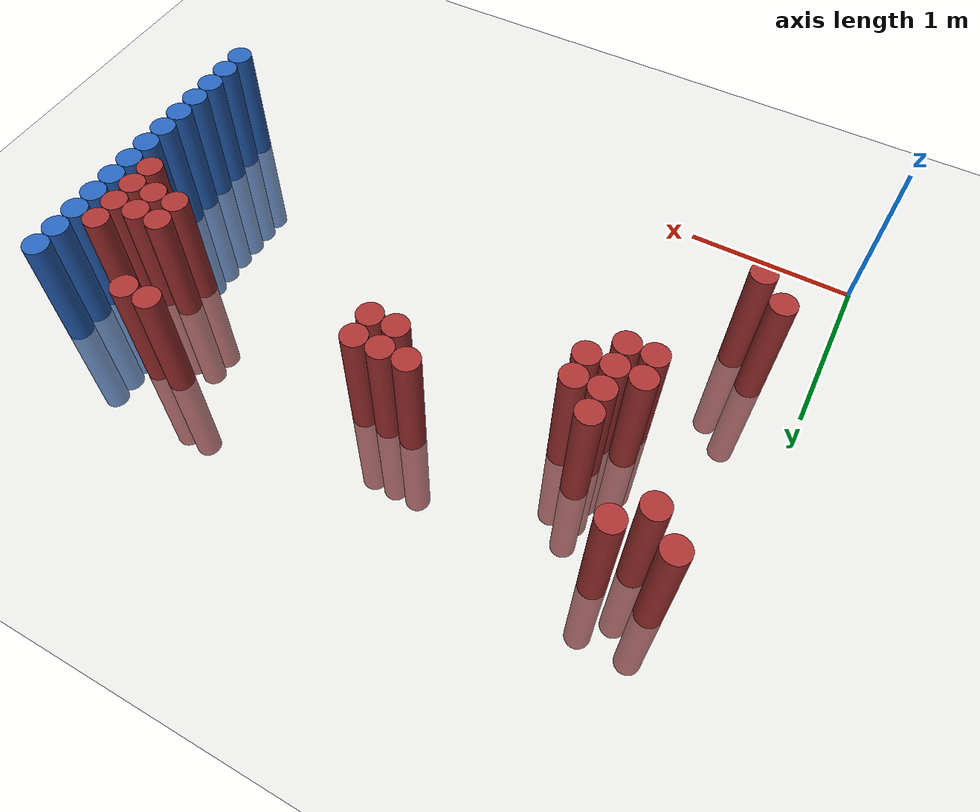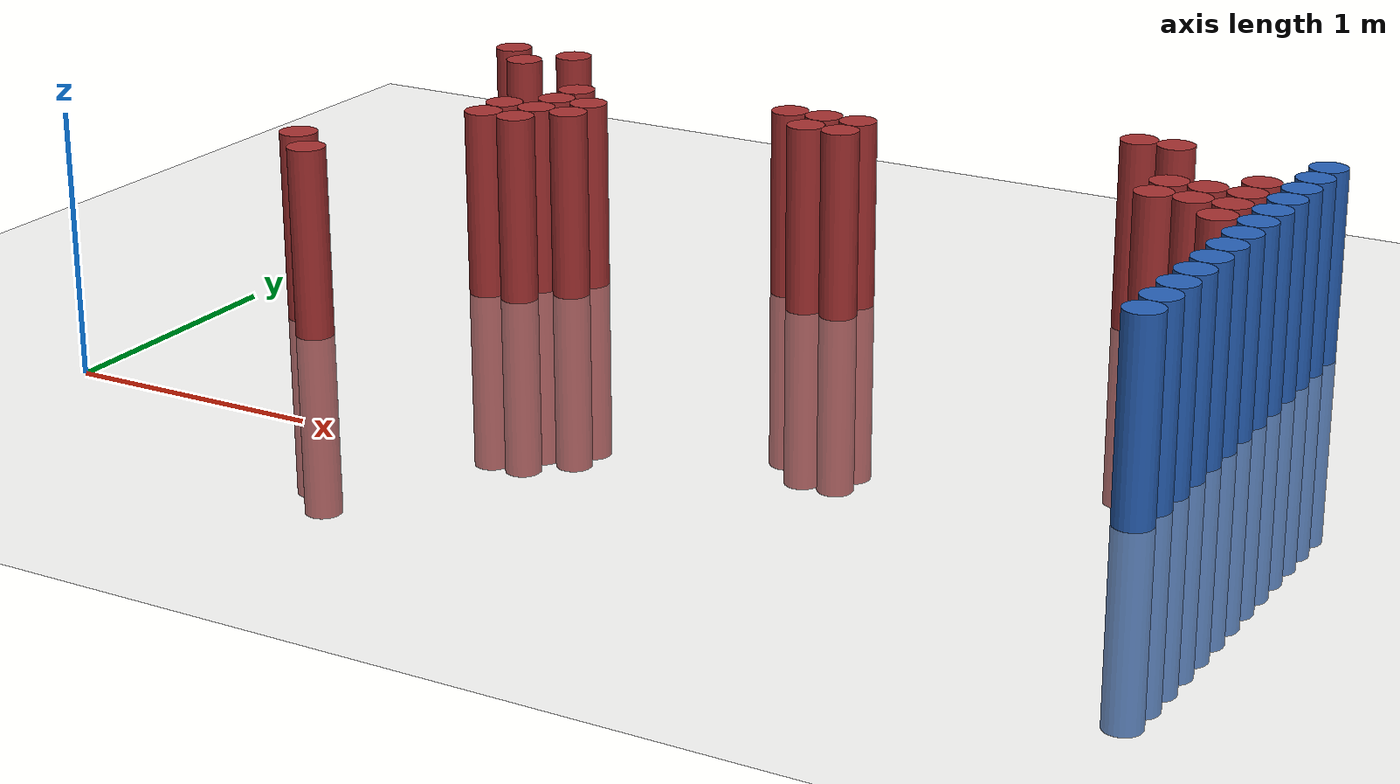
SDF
<sdf version="1.6">
 <world name="default">
  <model name="ground_plane">
   <static>1</static>
   <link name="link">
    <collision name="collision">
     <geometry><plane><normal>0 0 1</normal><size>100 100</size></plane></geometry>
     <surface><friction><ode><mu>100</mu><mu2>50</mu2></ode></friction></surface>
    </collision>
    <visual name="visual">
     <cast_shadows>0</cast_shadows>
     <geometry><plane><normal>0 0 1</normal><size>100 100</size></plane></geometry>
     <material>
      <script><uri>file://media/materials/scripts/gazebo.material</uri><name>Gazebo/Grey</name></script>
     </material>
    </visual>
   </link>
  </model>
  <model name="unit_cylinder_124">
   <static>1</static>
   <pose>3.925000 0.775000 0.000000 0.000000 0.000000 0.000000</pose>
   <link name="link">
    <inertial>
     <mass>1</mass>
     <inertia><ixx>0.145833</ixx><ixy>0</ixy><ixz>0</ixz><iyy>0.145833</iyy><iyz>0</iyz><izz>0.125</izz></inertia>
    </inertial>
    <collision name="collision">
     <geometry><cylinder><radius>0.075000</radius><length>1.5</length></cylinder></geometry>
    </collision>
    <visual name="visual">
     <geometry><cylinder><radius>0.075000</radius><length>1.5</length></cylinder></geometry>
     <material>
      <ambient>0.152000 0.379000 0.720000 1</ambient>
      <diffuse>0.152000 0.379000 0.720000 1</diffuse>
     </material>
     <material>
      <script><name>Gazebo/Grey</name><uri>file://media/materials/scripts/gazebo.material</uri></script>
     </material>
    </visual>
   </link>
  </model>
  <model name="unit_cylinder_126">
   <static>1</static>
   <pose>3.925000 0.925000 0.000000 0.000000 0.000000 0.000000</pose>
   <link name="link">
    <inertial>
     <mass>1</mass>
     <inertia><ixx>0.145833</ixx><ixy>0</ixy><ixz>0</ixz><iyy>0.145833</iyy><iyz>0</iyz><izz>0.125</izz></inertia>
    </inertial>
    <collision name="collision">
     <geometry><cylinder><radius>0.075000</radius><length>1.5</length></cylinder></geometry>
    </collision>
    <visual name="visual">
     <geometry><cylinder><radius>0.075000</radius><length>1.5</length></cylinder></geometry>
     <material>
      <ambient>0.152000 0.379000 0.720000 1</ambient>
      <diffuse>0.152000 0.379000 0.720000 1</diffuse>
     </material>
     <material>
      <script><name>Gazebo/Grey</name><uri>file://media/materials/scripts/gazebo.material</uri></script>
     </material>
    </visual>
   </link>
  </model>
  <model name="unit_cylinder_128">
   <static>1</static>
   <pose>3.925000 1.075000 0.000000 0.000000 0.000000 0.000000</pose>
   <link name="link">
    <inertial>
     <mass>1</mass>
     <inertia><ixx>0.145833</ixx><ixy>0</ixy><ixz>0</ixz><iyy>0.145833</iyy><iyz>0</iyz><izz>0.125</izz></inertia>
    </inertial>
    <collision name="collision">
     <geometry><cylinder><radius>0.075000</radius><length>1.5</length></cylinder></geometry>
    </collision>
    <visual name="visual">
     <geometry><cylinder><radius>0.075000</radius><length>1.5</length></cylinder></geometry>
     <material>
      <ambient>0.152000 0.379000 0.720000 1</ambient>
      <diffuse>0.152000 0.379000 0.720000 1</diffuse>
     </material>
     <material>
      <script><name>Gazebo/Grey</name><uri>file://media/materials/scripts/gazebo.material</uri></script>
     </material>
    </visual>
   </link>
  </model>
  <model name="unit_cylinder_130">
   <static>1</static>
   <pose>3.925000 1.225000 0.000000 0.000000 0.000000 0.000000</pose>
   <link name="link">
    <inertial>
     <mass>1</mass>
     <inertia><ixx>0.145833</ixx><ixy>0</ixy><ixz>0</ixz><iyy>0.145833</iyy><iyz>0</iyz><izz>0.125</izz></inertia>
    </inertial>
    <collision name="collision">
     <geometry><cylinder><radius>0.075000</radius><length>1.5</length></cylinder></geometry>
    </collision>
    <visual name="visual">
     <geometry><cylinder><radius>0.075000</radius><length>1.5</length></cylinder></geometry>
     <material>
      <ambient>0.152000 0.379000 0.720000 1</ambient>
      <diffuse>0.152000 0.379000 0.720000 1</diffuse>
     </material>
     <material>
      <script><name>Gazebo/Grey</name><uri>file://media/materials/scripts/gazebo.material</uri></script>
     </material>
    </visual>
   </link>
  </model>
  <model name="unit_cylinder_132">
   <static>1</static>
   <pose>3.925000 1.375000 0.000000 0.000000 0.000000 0.000000</pose>
   <link name="link">
    <inertial>
     <mass>1</mass>
     <inertia><ixx>0.145833</ixx><ixy>0</ixy><ixz>0</ixz><iyy>0.145833</iyy><iyz>0</iyz><izz>0.125</izz></inertia>
    </inertial>
    <collision name="collision">
     <geometry><cylinder><radius>0.075000</radius><length>1.5</length></cylinder></geometry>
    </collision>
    <visual name="visual">
     <geometry><cylinder><radius>0.075000</radius><length>1.5</length></cylinder></geometry>
     <material>
      <ambient>0.152000 0.379000 0.720000 1</ambient>
      <diffuse>0.152000 0.379000 0.720000 1</diffuse>
     </material>
     <material>
      <script><name>Gazebo/Grey</name><uri>file://media/materials/scripts/gazebo.material</uri></script>
     </material>
    </visual>
   </link>
  </model>
  <model name="unit_cylinder_134">
   <static>1</static>
   <pose>3.925000 1.525000 0.000000 0.000000 0.000000 0.000000</pose>
   <link name="link">
    <inertial>
     <mass>1</mass>
     <inertia><ixx>0.145833</ixx><ixy>0</ixy><ixz>0</ixz><iyy>0.145833</iyy><iyz>0</iyz><izz>0.125</izz></inertia>
    </inertial>
    <collision name="collision">
     <geometry><cylinder><radius>0.075000</radius><length>1.5</length></cylinder></geometry>
    </collision>
    <visual name="visual">
     <geometry><cylinder><radius>0.075000</radius><length>1.5</length></cylinder></geometry>
     <material>
      <ambient>0.152000 0.379000 0.720000 1</ambient>
      <diffuse>0.152000 0.379000 0.720000 1</diffuse>
     </material>
     <material>
      <script><name>Gazebo/Grey</name><uri>file://media/materials/scripts/gazebo.material</uri></script>
     </material>
    </visual>
   </link>
  </model>
  <model name="unit_cylinder_136">
   <static>1</static>
   <pose>3.925000 1.675000 0.000000 0.000000 0.000000 0.000000</pose>
   <link name="link">
    <inertial>
     <mass>1</mass>
     <inertia><ixx>0.145833</ixx><ixy>0</ixy><ixz>0</ixz><iyy>0.145833</iyy><iyz>0</iyz><izz>0.125</izz></inertia>
    </inertial>
    <collision name="collision">
     <geometry><cylinder><radius>0.075000</radius><length>1.5</length></cylinder></geometry>
    </collision>
    <visual name="visual">
     <geometry><cylinder><radius>0.075000</radius><length>1.5</length></cylinder></geometry>
     <material>
      <ambient>0.152000 0.379000 0.720000 1</ambient>
      <diffuse>0.152000 0.379000 0.720000 1</diffuse>
     </material>
     <material>
      <script><name>Gazebo/Grey</name><uri>file://media/materials/scripts/gazebo.material</uri></script>
     </material>
    </visual>
   </link>
  </model>
  <model name="unit_cylinder_138">
   <static>1</static>
   <pose>3.925000 1.825000 0.000000 0.000000 0.000000 0.000000</pose>
   <link name="link">
    <inertial>
     <mass>1</mass>
     <inertia><ixx>0.145833</ixx><ixy>0</ixy><ixz>0</ixz><iyy>0.145833</iyy><iyz>0</iyz><izz>0.125</izz></inertia>
    </inertial>
    <collision name="collision">
     <geometry><cylinder><radius>0.075000</radius><length>1.5</length></cylinder></geometry>
    </collision>
    <visual name="visual">
     <geometry><cylinder><radius>0.075000</radius><length>1.5</length></cylinder></geometry>
     <material>
      <ambient>0.152000 0.379000 0.720000 1</ambient>
      <diffuse>0.152000 0.379000 0.720000 1</diffuse>
     </material>
     <material>
      <script><name>Gazebo/Grey</name><uri>file://media/materials/scripts/gazebo.material</uri></script>
     </material>
    </visual>
   </link>
  </model>
  <model name="unit_cylinder_140">
   <static>1</static>
   <pose>3.925000 1.975000 0.000000 0.000000 0.000000 0.000000</pose>
   <link name="link">
    <inertial>
     <mass>1</mass>
     <inertia><ixx>0.145833</ixx><ixy>0</ixy><ixz>0</ixz><iyy>0.145833</iyy><iyz>0</iyz><izz>0.125</izz></inertia>
    </inertial>
    <collision name="collision">
     <geometry><cylinder><radius>0.075000</radius><length>1.5</length></cylinder></geometry>
    </collision>
    <visual name="visual">
     <geometry><cylinder><radius>0.075000</radius><length>1.5</length></cylinder></geometry>
     <material>
      <ambient>0.152000 0.379000 0.720000 1</ambient>
      <diffuse>0.152000 0.379000 0.720000 1</diffuse>
     </material>
     <material>
      <script><name>Gazebo/Grey</name><uri>file://media/materials/scripts/gazebo.material</uri></script>
     </material>
    </visual>
   </link>
  </model>
  <model name="unit_cylinder_142">
   <static>1</static>
   <pose>3.925000 2.125000 0.000000 0.000000 0.000000 0.000000</pose>
   <link name="link">
    <inertial>
     <mass>1</mass>
     <inertia><ixx>0.145833</ixx><ixy>0</ixy><ixz>0</ixz><iyy>0.145833</iyy><iyz>0</iyz><izz>0.125</izz></inertia>
    </inertial>
    <collision name="collision">
     <geometry><cylinder><radius>0.075000</radius><length>1.5</length></cylinder></geometry>
    </collision>
    <visual name="visual">
     <geometry><cylinder><radius>0.075000</radius><length>1.5</length></cylinder></geometry>
     <material>
      <ambient>0.152000 0.379000 0.720000 1</ambient>
      <diffuse>0.152000 0.379000 0.720000 1</diffuse>
     </material>
     <material>
      <script><name>Gazebo/Grey</name><uri>file://media/materials/scripts/gazebo.material</uri></script>
     </material>
    </visual>
   </link>
  </model>
  <model name="unit_cylinder_144">
   <static>1</static>
   <pose>3.925000 2.275000 0.000000 0.000000 0.000000 0.000000</pose>
   <link name="link">
    <inertial>
     <mass>1</mass>
     <inertia><ixx>0.145833</ixx><ixy>0</ixy><ixz>0</ixz><iyy>0.145833</iyy><iyz>0</iyz><izz>0.125</izz></inertia>
    </inertial>
    <collision name="collision">
     <geometry><cylinder><radius>0.075000</radius><length>1.5</length></cylinder></geometry>
    </collision>
    <visual name="visual">
     <geometry><cylinder><radius>0.075000</radius><length>1.5</length></cylinder></geometry>
     <material>
      <ambient>0.152000 0.379000 0.720000 1</ambient>
      <diffuse>0.152000 0.379000 0.720000 1</diffuse>
     </material>
     <material>
      <script><name>Gazebo/Grey</name><uri>file://media/materials/scripts/gazebo.material</uri></script>
     </material>
    </visual>
   </link>
  </model>
  <model name="unit_cylinder_146">
   <static>1</static>
   <pose>3.925000 2.425000 0.000000 0.000000 0.000000 0.000000</pose>
   <link name="link">
    <inertial>
     <mass>1</mass>
     <inertia><ixx>0.145833</ixx><ixy>0</ixy><ixz>0</ixz><iyy>0.145833</iyy><iyz>0</iyz><izz>0.125</izz></inertia>
    </inertial>
    <collision name="collision">
     <geometry><cylinder><radius>0.075000</radius><length>1.5</length></cylinder></geometry>
    </collision>
    <visual name="visual">
     <geometry><cylinder><radius>0.075000</radius><length>1.5</length></cylinder></geometry>
     <material>
      <ambient>0.152000 0.379000 0.720000 1</ambient>
      <diffuse>0.152000 0.379000 0.720000 1</diffuse>
     </material>
     <material>
      <script><name>Gazebo/Grey</name><uri>file://media/materials/scripts/gazebo.material</uri></script>
     </material>
    </visual>
   </link>
  </model>
  <model name="unit_cylinder_378">
   <static>1</static>
   <pose>0.325000 0.925000 0.000000 0.000000 0.000000 0.000000</pose>
   <link name="link">
    <inertial>
     <mass>1</mass>
     <inertia><ixx>0.145833</ixx><ixy>0</ixy><ixz>0</ixz><iyy>0.145833</iyy><iyz>0</iyz><izz>0.125</izz></inertia>
    </inertial>
    <collision name="collision">
     <geometry><cylinder><radius>0.075000</radius><length>1.5</length></cylinder></geometry>
    </collision>
    <visual name="visual">
     <geometry><cylinder><radius>0.075000</radius><length>1.5</length></cylinder></geometry>
     <material>
      <ambient>0.648000 0.192000 0.192000 1</ambient>
      <diffuse>0.648000 0.192000 0.192000 1</diffuse>
     </material>
     <material>
      <script><name>Gazebo/Grey</name><uri>file://media/materials/scripts/gazebo.material</uri></script>
     </material>
    </visual>
   </link>
  </model>
  <model name="unit_cylinder_379">
   <static>1</static>
   <pose>0.325000 2.425000 0.000000 0.000000 0.000000 0.000000</pose>
   <link name="link">
    <inertial>
     <mass>1</mass>
     <inertia><ixx>0.145833</ixx><ixy>0</ixy><ixz>0</ixz><iyy>0.145833</iyy><iyz>0</iyz><izz>0.125</izz></inertia>
    </inertial>
    <collision name="collision">
     <geometry><cylinder><radius>0.075000</radius><length>1.5</length></cylinder></geometry>
    </collision>
    <visual name="visual">
     <geometry><cylinder><radius>0.075000</radius><length>1.5</length></cylinder></geometry>
     <material>
      <ambient>0.648000 0.192000 0.192000 1</ambient>
      <diffuse>0.648000 0.192000 0.192000 1</diffuse>
     </material>
     <material>
      <script><name>Gazebo/Grey</name><uri>file://media/materials/scripts/gazebo.material</uri></script>
     </material>
    </visual>
   </link>
  </model>
  <model name="unit_cylinder_385">
   <static>1</static>
   <pose>0.475000 0.775000 0.000000 0.000000 0.000000 0.000000</pose>
   <link name="link">
    <inertial>
     <mass>1</mass>
     <inertia><ixx>0.145833</ixx><ixy>0</ixy><ixz>0</ixz><iyy>0.145833</iyy><iyz>0</iyz><izz>0.125</izz></inertia>
    </inertial>
    <collision name="collision">
     <geometry><cylinder><radius>0.075000</radius><length>1.5</length></cylinder></geometry>
    </collision>
    <visual name="visual">
     <geometry><cylinder><radius>0.075000</radius><length>1.5</length></cylinder></geometry>
     <material>
      <ambient>0.648000 0.192000 0.192000 1</ambient>
      <diffuse>0.648000 0.192000 0.192000 1</diffuse>
     </material>
     <material>
      <script><name>Gazebo/Grey</name><uri>file://media/materials/scripts/gazebo.material</uri></script>
     </material>
    </visual>
   </link>
  </model>
  <model name="unit_cylinder_386">
   <static>1</static>
   <pose>0.475000 2.275000 0.000000 0.000000 0.000000 0.000000</pose>
   <link name="link">
    <inertial>
     <mass>1</mass>
     <inertia><ixx>0.145833</ixx><ixy>0</ixy><ixz>0</ixz><iyy>0.145833</iyy><iyz>0</iyz><izz>0.125</izz></inertia>
    </inertial>
    <collision name="collision">
     <geometry><cylinder><radius>0.075000</radius><length>1.5</length></cylinder></geometry>
    </collision>
    <visual name="visual">
     <geometry><cylinder><radius>0.075000</radius><length>1.5</length></cylinder></geometry>
     <material>
      <ambient>0.648000 0.192000 0.192000 1</ambient>
      <diffuse>0.648000 0.192000 0.192000 1</diffuse>
     </material>
     <material>
      <script><name>Gazebo/Grey</name><uri>file://media/materials/scripts/gazebo.material</uri></script>
     </material>
    </visual>
   </link>
  </model>
  <model name="unit_cylinder_391">
   <static>1</static>
   <pose>0.625000 2.425000 0.000000 0.000000 0.000000 0.000000</pose>
   <link name="link">
    <inertial>
     <mass>1</mass>
     <inertia><ixx>0.145833</ixx><ixy>0</ixy><ixz>0</ixz><iyy>0.145833</iyy><iyz>0</iyz><izz>0.125</izz></inertia>
    </inertial>
    <collision name="collision">
     <geometry><cylinder><radius>0.075000</radius><length>1.5</length></cylinder></geometry>
    </collision>
    <visual name="visual">
     <geometry><cylinder><radius>0.075000</radius><length>1.5</length></cylinder></geometry>
     <material>
      <ambient>0.648000 0.192000 0.192000 1</ambient>
      <diffuse>0.648000 0.192000 0.192000 1</diffuse>
     </material>
     <material>
      <script><name>Gazebo/Grey</name><uri>file://media/materials/scripts/gazebo.material</uri></script>
     </material>
    </visual>
   </link>
  </model>
  <model name="unit_cylinder_392">
   <static>1</static>
   <pose>0.775000 1.525000 0.000000 0.000000 0.000000 0.000000</pose>
   <link name="link">
    <inertial>
     <mass>1</mass>
     <inertia><ixx>0.145833</ixx><ixy>0</ixy><ixz>0</ixz><iyy>0.145833</iyy><iyz>0</iyz><izz>0.125</izz></inertia>
    </inertial>
    <collision name="collision">
     <geometry><cylinder><radius>0.075000</radius><length>1.5</length></cylinder></geometry>
    </collision>
    <visual name="visual">
     <geometry><cylinder><radius>0.075000</radius><length>1.5</length></cylinder></geometry>
     <material>
      <ambient>0.648000 0.192000 0.192000 1</ambient>
      <diffuse>0.648000 0.192000 0.192000 1</diffuse>
     </material>
     <material>
      <script><name>Gazebo/Grey</name><uri>file://media/materials/scripts/gazebo.material</uri></script>
     </material>
    </visual>
   </link>
  </model>
  <model name="unit_cylinder_393">
   <static>1</static>
   <pose>0.775000 1.675000 0.000000 0.000000 0.000000 0.000000</pose>
   <link name="link">
    <inertial>
     <mass>1</mass>
     <inertia><ixx>0.145833</ixx><ixy>0</ixy><ixz>0</ixz><iyy>0.145833</iyy><iyz>0</iyz><izz>0.125</izz></inertia>
    </inertial>
    <collision name="collision">
     <geometry><cylinder><radius>0.075000</radius><length>1.5</length></cylinder></geometry>
    </collision>
    <visual name="visual">
     <geometry><cylinder><radius>0.075000</radius><length>1.5</length></cylinder></geometry>
     <material>
      <ambient>0.648000 0.192000 0.192000 1</ambient>
      <diffuse>0.648000 0.192000 0.192000 1</diffuse>
     </material>
     <material>
      <script><name>Gazebo/Grey</name><uri>file://media/materials/scripts/gazebo.material</uri></script>
     </material>
    </visual>
   </link>
  </model>
  <model name="unit_cylinder_394">
   <static>1</static>
   <pose>0.925000 1.525000 0.000000 0.000000 0.000000 0.000000</pose>
   <link name="link">
    <inertial>
     <mass>1</mass>
     <inertia><ixx>0.145833</ixx><ixy>0</ixy><ixz>0</ixz><iyy>0.145833</iyy><iyz>0</iyz><izz>0.125</izz></inertia>
    </inertial>
    <collision name="collision">
     <geometry><cylinder><radius>0.075000</radius><length>1.5</length></cylinder></geometry>
    </collision>
    <visual name="visual">
     <geometry><cylinder><radius>0.075000</radius><length>1.5</length></cylinder></geometry>
     <material>
      <ambient>0.648000 0.192000 0.192000 1</ambient>
      <diffuse>0.648000 0.192000 0.192000 1</diffuse>
     </material>
     <material>
      <script><name>Gazebo/Grey</name><uri>file://media/materials/scripts/gazebo.material</uri></script>
     </material>
    </visual>
   </link>
  </model>
  <model name="unit_cylinder_395">
   <static>1</static>
   <pose>0.925000 1.675000 0.000000 0.000000 0.000000 0.000000</pose>
   <link name="link">
    <inertial>
     <mass>1</mass>
     <inertia><ixx>0.145833</ixx><ixy>0</ixy><ixz>0</ixz><iyy>0.145833</iyy><iyz>0</iyz><izz>0.125</izz></inertia>
    </inertial>
    <collision name="collision">
     <geometry><cylinder><radius>0.075000</radius><length>1.5</length></cylinder></geometry>
    </collision>
    <visual name="visual">
     <geometry><cylinder><radius>0.075000</radius><length>1.5</length></cylinder></geometry>
     <material>
      <ambient>0.648000 0.192000 0.192000 1</ambient>
      <diffuse>0.648000 0.192000 0.192000 1</diffuse>
     </material>
     <material>
      <script><name>Gazebo/Grey</name><uri>file://media/materials/scripts/gazebo.material</uri></script>
     </material>
    </visual>
   </link>
  </model>
  <model name="unit_cylinder_396">
   <static>1</static>
   <pose>0.925000 1.825000 0.000000 0.000000 0.000000 0.000000</pose>
   <link name="link">
    <inertial>
     <mass>1</mass>
     <inertia><ixx>0.145833</ixx><ixy>0</ixy><ixz>0</ixz><iyy>0.145833</iyy><iyz>0</iyz><izz>0.125</izz></inertia>
    </inertial>
    <collision name="collision">
     <geometry><cylinder><radius>0.075000</radius><length>1.5</length></cylinder></geometry>
    </collision>
    <visual name="visual">
     <geometry><cylinder><radius>0.075000</radius><length>1.5</length></cylinder></geometry>
     <material>
      <ambient>0.648000 0.192000 0.192000 1</ambient>
      <diffuse>0.648000 0.192000 0.192000 1</diffuse>
     </material>
     <material>
      <script><name>Gazebo/Grey</name><uri>file://media/materials/scripts/gazebo.material</uri></script>
     </material>
    </visual>
   </link>
  </model>
  <model name="unit_cylinder_397">
   <static>1</static>
   <pose>0.925000 1.975000 0.000000 0.000000 0.000000 0.000000</pose>
   <link name="link">
    <inertial>
     <mass>1</mass>
     <inertia><ixx>0.145833</ixx><ixy>0</ixy><ixz>0</ixz><iyy>0.145833</iyy><iyz>0</iyz><izz>0.125</izz></inertia>
    </inertial>
    <collision name="collision">
     <geometry><cylinder><radius>0.075000</radius><length>1.5</length></cylinder></geometry>
    </collision>
    <visual name="visual">
     <geometry><cylinder><radius>0.075000</radius><length>1.5</length></cylinder></geometry>
     <material>
      <ambient>0.648000 0.192000 0.192000 1</ambient>
      <diffuse>0.648000 0.192000 0.192000 1</diffuse>
     </material>
     <material>
      <script><name>Gazebo/Grey</name><uri>file://media/materials/scripts/gazebo.material</uri></script>
     </material>
    </visual>
   </link>
  </model>
  <model name="unit_cylinder_400">
   <static>1</static>
   <pose>1.075000 1.675000 0.000000 0.000000 0.000000 0.000000</pose>
   <link name="link">
    <inertial>
     <mass>1</mass>
     <inertia><ixx>0.145833</ixx><ixy>0</ixy><ixz>0</ixz><iyy>0.145833</iyy><iyz>0</iyz><izz>0.125</izz></inertia>
    </inertial>
    <collision name="collision">
     <geometry><cylinder><radius>0.075000</radius><length>1.5</length></cylinder></geometry>
    </collision>
    <visual name="visual">
     <geometry><cylinder><radius>0.075000</radius><length>1.5</length></cylinder></geometry>
     <material>
      <ambient>0.648000 0.192000 0.192000 1</ambient>
      <diffuse>0.648000 0.192000 0.192000 1</diffuse>
     </material>
     <material>
      <script><name>Gazebo/Grey</name><uri>file://media/materials/scripts/gazebo.material</uri></script>
     </material>
    </visual>
   </link>
  </model>
  <model name="unit_cylinder_401">
   <static>1</static>
   <pose>1.075000 1.825000 0.000000 0.000000 0.000000 0.000000</pose>
   <link name="link">
    <inertial>
     <mass>1</mass>
     <inertia><ixx>0.145833</ixx><ixy>0</ixy><ixz>0</ixz><iyy>0.145833</iyy><iyz>0</iyz><izz>0.125</izz></inertia>
    </inertial>
    <collision name="collision">
     <geometry><cylinder><radius>0.075000</radius><length>1.5</length></cylinder></geometry>
    </collision>
    <visual name="visual">
     <geometry><cylinder><radius>0.075000</radius><length>1.5</length></cylinder></geometry>
     <material>
      <ambient>0.648000 0.192000 0.192000 1</ambient>
      <diffuse>0.648000 0.192000 0.192000 1</diffuse>
     </material>
     <material>
      <script><name>Gazebo/Grey</name><uri>file://media/materials/scripts/gazebo.material</uri></script>
     </material>
    </visual>
   </link>
  </model>
  <model name="unit_cylinder_437">
   <static>1</static>
   <pose>1.825000 2.125000 0.000000 0.000000 0.000000 0.000000</pose>
   <link name="link">
    <inertial>
     <mass>1</mass>
     <inertia><ixx>0.145833</ixx><ixy>0</ixy><ixz>0</ixz><iyy>0.145833</iyy><iyz>0</iyz><izz>0.125</izz></inertia>
    </inertial>
    <collision name="collision">
     <geometry><cylinder><radius>0.075000</radius><length>1.5</length></cylinder></geometry>
    </collision>
    <visual name="visual">
     <geometry><cylinder><radius>0.075000</radius><length>1.5</length></cylinder></geometry>
     <material>
      <ambient>0.648000 0.192000 0.192000 1</ambient>
      <diffuse>0.648000 0.192000 0.192000 1</diffuse>
     </material>
     <material>
      <script><name>Gazebo/Grey</name><uri>file://media/materials/scripts/gazebo.material</uri></script>
     </material>
    </visual>
   </link>
  </model>
  <model name="unit_cylinder_446">
   <static>1</static>
   <pose>1.975000 1.975000 0.000000 0.000000 0.000000 0.000000</pose>
   <link name="link">
    <inertial>
     <mass>1</mass>
     <inertia><ixx>0.145833</ixx><ixy>0</ixy><ixz>0</ixz><iyy>0.145833</iyy><iyz>0</iyz><izz>0.125</izz></inertia>
    </inertial>
    <collision name="collision">
     <geometry><cylinder><radius>0.075000</radius><length>1.5</length></cylinder></geometry>
    </collision>
    <visual name="visual">
     <geometry><cylinder><radius>0.075000</radius><length>1.5</length></cylinder></geometry>
     <material>
      <ambient>0.648000 0.192000 0.192000 1</ambient>
      <diffuse>0.648000 0.192000 0.192000 1</diffuse>
     </material>
     <material>
      <script><name>Gazebo/Grey</name><uri>file://media/materials/scripts/gazebo.material</uri></script>
     </material>
    </visual>
   </link>
  </model>
  <model name="unit_cylinder_447">
   <static>1</static>
   <pose>1.975000 2.125000 0.000000 0.000000 0.000000 0.000000</pose>
   <link name="link">
    <inertial>
     <mass>1</mass>
     <inertia><ixx>0.145833</ixx><ixy>0</ixy><ixz>0</ixz><iyy>0.145833</iyy><iyz>0</iyz><izz>0.125</izz></inertia>
    </inertial>
    <collision name="collision">
     <geometry><cylinder><radius>0.075000</radius><length>1.5</length></cylinder></geometry>
    </collision>
    <visual name="visual">
     <geometry><cylinder><radius>0.075000</radius><length>1.5</length></cylinder></geometry>
     <material>
      <ambient>0.648000 0.192000 0.192000 1</ambient>
      <diffuse>0.648000 0.192000 0.192000 1</diffuse>
     </material>
     <material>
      <script><name>Gazebo/Grey</name><uri>file://media/materials/scripts/gazebo.material</uri></script>
     </material>
    </visual>
   </link>
  </model>
  <model name="unit_cylinder_452">
   <static>1</static>
   <pose>2.125000 1.975000 0.000000 0.000000 0.000000 0.000000</pose>
   <link name="link">
    <inertial>
     <mass>1</mass>
     <inertia><ixx>0.145833</ixx><ixy>0</ixy><ixz>0</ixz><iyy>0.145833</iyy><iyz>0</iyz><izz>0.125</izz></inertia>
    </inertial>
    <collision name="collision">
     <geometry><cylinder><radius>0.075000</radius><length>1.5</length></cylinder></geometry>
    </collision>
    <visual name="visual">
     <geometry><cylinder><radius>0.075000</radius><length>1.5</length></cylinder></geometry>
     <material>
      <ambient>0.648000 0.192000 0.192000 1</ambient>
      <diffuse>0.648000 0.192000 0.192000 1</diffuse>
     </material>
     <material>
      <script><name>Gazebo/Grey</name><uri>file://media/materials/scripts/gazebo.material</uri></script>
     </material>
    </visual>
   </link>
  </model>
  <model name="unit_cylinder_453">
   <static>1</static>
   <pose>2.125000 2.125000 0.000000 0.000000 0.000000 0.000000</pose>
   <link name="link">
    <inertial>
     <mass>1</mass>
     <inertia><ixx>0.145833</ixx><ixy>0</ixy><ixz>0</ixz><iyy>0.145833</iyy><iyz>0</iyz><izz>0.125</izz></inertia>
    </inertial>
    <collision name="collision">
     <geometry><cylinder><radius>0.075000</radius><length>1.5</length></cylinder></geometry>
    </collision>
    <visual name="visual">
     <geometry><cylinder><radius>0.075000</radius><length>1.5</length></cylinder></geometry>
     <material>
      <ambient>0.648000 0.192000 0.192000 1</ambient>
      <diffuse>0.648000 0.192000 0.192000 1</diffuse>
     </material>
     <material>
      <script><name>Gazebo/Grey</name><uri>file://media/materials/scripts/gazebo.material</uri></script>
     </material>
    </visual>
   </link>
  </model>
  <model name="unit_cylinder_493">
   <static>1</static>
   <pose>3.175000 2.425000 0.000000 0.000000 0.000000 0.000000</pose>
   <link name="link">
    <inertial>
     <mass>1</mass>
     <inertia><ixx>0.145833</ixx><ixy>0</ixy><ixz>0</ixz><iyy>0.145833</iyy><iyz>0</iyz><izz>0.125</izz></inertia>
    </inertial>
    <collision name="collision">
     <geometry><cylinder><radius>0.075000</radius><length>1.5</length></cylinder></geometry>
    </collision>
    <visual name="visual">
     <geometry><cylinder><radius>0.075000</radius><length>1.5</length></cylinder></geometry>
     <material>
      <ambient>0.648000 0.192000 0.192000 1</ambient>
      <diffuse>0.648000 0.192000 0.192000 1</diffuse>
     </material>
     <material>
      <script><name>Gazebo/Grey</name><uri>file://media/materials/scripts/gazebo.material</uri></script>
     </material>
    </visual>
   </link>
  </model>
  <model name="unit_cylinder_495">
   <static>1</static>
   <pose>3.325000 2.425000 0.000000 0.000000 0.000000 0.000000</pose>
   <link name="link">
    <inertial>
     <mass>1</mass>
     <inertia><ixx>0.145833</ixx><ixy>0</ixy><ixz>0</ixz><iyy>0.145833</iyy><iyz>0</iyz><izz>0.125</izz></inertia>
    </inertial>
    <collision name="collision">
     <geometry><cylinder><radius>0.075000</radius><length>1.5</length></cylinder></geometry>
    </collision>
    <visual name="visual">
     <geometry><cylinder><radius>0.075000</radius><length>1.5</length></cylinder></geometry>
     <material>
      <ambient>0.648000 0.192000 0.192000 1</ambient>
      <diffuse>0.648000 0.192000 0.192000 1</diffuse>
     </material>
     <material>
      <script><name>Gazebo/Grey</name><uri>file://media/materials/scripts/gazebo.material</uri></script>
     </material>
    </visual>
   </link>
  </model>
  <model name="unit_cylinder_497">
   <static>1</static>
   <pose>3.475000 1.825000 0.000000 0.000000 0.000000 0.000000</pose>
   <link name="link">
    <inertial>
     <mass>1</mass>
     <inertia><ixx>0.145833</ixx><ixy>0</ixy><ixz>0</ixz><iyy>0.145833</iyy><iyz>0</iyz><izz>0.125</izz></inertia>
    </inertial>
    <collision name="collision">
     <geometry><cylinder><radius>0.075000</radius><length>1.5</length></cylinder></geometry>
    </collision>
    <visual name="visual">
     <geometry><cylinder><radius>0.075000</radius><length>1.5</length></cylinder></geometry>
     <material>
      <ambient>0.648000 0.192000 0.192000 1</ambient>
      <diffuse>0.648000 0.192000 0.192000 1</diffuse>
     </material>
     <material>
      <script><name>Gazebo/Grey</name><uri>file://media/materials/scripts/gazebo.material</uri></script>
     </material>
    </visual>
   </link>
  </model>
  <model name="unit_cylinder_498">
   <static>1</static>
   <pose>3.475000 1.975000 0.000000 0.000000 0.000000 0.000000</pose>
   <link name="link">
    <inertial>
     <mass>1</mass>
     <inertia><ixx>0.145833</ixx><ixy>0</ixy><ixz>0</ixz><iyy>0.145833</iyy><iyz>0</iyz><izz>0.125</izz></inertia>
    </inertial>
    <collision name="collision">
     <geometry><cylinder><radius>0.075000</radius><length>1.5</length></cylinder></geometry>
    </collision>
    <visual name="visual">
     <geometry><cylinder><radius>0.075000</radius><length>1.5</length></cylinder></geometry>
     <material>
      <ambient>0.648000 0.192000 0.192000 1</ambient>
      <diffuse>0.648000 0.192000 0.192000 1</diffuse>
     </material>
     <material>
      <script><name>Gazebo/Grey</name><uri>file://media/materials/scripts/gazebo.material</uri></script>
     </material>
    </visual>
   </link>
  </model>
  <model name="unit_cylinder_501">
   <static>1</static>
   <pose>3.625000 1.825000 0.000000 0.000000 0.000000 0.000000</pose>
   <link name="link">
    <inertial>
     <mass>1</mass>
     <inertia><ixx>0.145833</ixx><ixy>0</ixy><ixz>0</ixz><iyy>0.145833</iyy><iyz>0</iyz><izz>0.125</izz></inertia>
    </inertial>
    <collision name="collision">
     <geometry><cylinder><radius>0.075000</radius><length>1.5</length></cylinder></geometry>
    </collision>
    <visual name="visual">
     <geometry><cylinder><radius>0.075000</radius><length>1.5</length></cylinder></geometry>
     <material>
      <ambient>0.648000 0.192000 0.192000 1</ambient>
      <diffuse>0.648000 0.192000 0.192000 1</diffuse>
     </material>
     <material>
      <script><name>Gazebo/Grey</name><uri>file://media/materials/scripts/gazebo.material</uri></script>
     </material>
    </visual>
   </link>
  </model>
  <model name="unit_cylinder_502">
   <static>1</static>
   <pose>3.625000 1.975000 0.000000 0.000000 0.000000 0.000000</pose>
   <link name="link">
    <inertial>
     <mass>1</mass>
     <inertia><ixx>0.145833</ixx><ixy>0</ixy><ixz>0</ixz><iyy>0.145833</iyy><iyz>0</iyz><izz>0.125</izz></inertia>
    </inertial>
    <collision name="collision">
     <geometry><cylinder><radius>0.075000</radius><length>1.5</length></cylinder></geometry>
    </collision>
    <visual name="visual">
     <geometry><cylinder><radius>0.075000</radius><length>1.5</length></cylinder></geometry>
     <material>
      <ambient>0.648000 0.192000 0.192000 1</ambient>
      <diffuse>0.648000 0.192000 0.192000 1</diffuse>
     </material>
     <material>
      <script><name>Gazebo/Grey</name><uri>file://media/materials/scripts/gazebo.material</uri></script>
     </material>
    </visual>
   </link>
  </model>
  <model name="unit_cylinder_518">
   <static>1</static>
   <pose>3.775000 1.675000 0.000000 0.000000 0.000000 0.000000</pose>
   <link name="link">
    <inertial>
     <mass>1</mass>
     <inertia><ixx>0.145833</ixx><ixy>0</ixy><ixz>0</ixz><iyy>0.145833</iyy><iyz>0</iyz><izz>0.125</izz></inertia>
    </inertial>
    <collision name="collision">
     <geometry><cylinder><radius>0.075000</radius><length>1.5</length></cylinder></geometry>
    </collision>
    <visual name="visual">
     <geometry><cylinder><radius>0.075000</radius><length>1.5</length></cylinder></geometry>
     <material>
      <ambient>0.648000 0.192000 0.192000 1</ambient>
      <diffuse>0.648000 0.192000 0.192000 1</diffuse>
     </material>
     <material>
      <script><name>Gazebo/Grey</name><uri>file://media/materials/scripts/gazebo.material</uri></script>
     </material>
    </visual>
   </link>
  </model>
  <model name="unit_cylinder_519">
   <static>1</static>
   <pose>3.775000 1.825000 0.000000 0.000000 0.000000 0.000000</pose>
   <link name="link">
    <inertial>
     <mass>1</mass>
     <inertia><ixx>0.145833</ixx><ixy>0</ixy><ixz>0</ixz><iyy>0.145833</iyy><iyz>0</iyz><izz>0.125</izz></inertia>
    </inertial>
    <collision name="collision">
     <geometry><cylinder><radius>0.075000</radius><length>1.5</length></cylinder></geometry>
    </collision>
    <visual name="visual">
     <geometry><cylinder><radius>0.075000</radius><length>1.5</length></cylinder></geometry>
     <material>
      <ambient>0.648000 0.192000 0.192000 1</ambient>
      <diffuse>0.648000 0.192000 0.192000 1</diffuse>
     </material>
     <material>
      <script><name>Gazebo/Grey</name><uri>file://media/materials/scripts/gazebo.material</uri></script>
     </material>
    </visual>
   </link>
  </model>
  <model name="unit_cylinder_520">
   <static>1</static>
   <pose>3.775000 1.975000 0.000000 0.000000 0.000000 0.000000</pose>
   <link name="link">
    <inertial>
     <mass>1</mass>
     <inertia><ixx>0.145833</ixx><ixy>0</ixy><ixz>0</ixz><iyy>0.145833</iyy><iyz>0</iyz><izz>0.125</izz></inertia>
    </inertial>
    <collision name="collision">
     <geometry><cylinder><radius>0.075000</radius><length>1.5</length></cylinder></geometry>
    </collision>
    <visual name="visual">
     <geometry><cylinder><radius>0.075000</radius><length>1.5</length></cylinder></geometry>
     <material>
      <ambient>0.648000 0.192000 0.192000 1</ambient>
      <diffuse>0.648000 0.192000 0.192000 1</diffuse>
     </material>
     <material>
      <script><name>Gazebo/Grey</name><uri>file://media/materials/scripts/gazebo.material</uri></script>
     </material>
    </visual>
   </link>
  </model>
  <model name="unit_cylinder_521">
   <static>1</static>
   <pose>3.775000 2.125000 0.000000 0.000000 0.000000 0.000000</pose>
   <link name="link">
    <inertial>
     <mass>1</mass>
     <inertia><ixx>0.145833</ixx><ixy>0</ixy><ixz>0</ixz><iyy>0.145833</iyy><iyz>0</iyz><izz>0.125</izz></inertia>
    </inertial>
    <collision name="collision">
     <geometry><cylinder><radius>0.075000</radius><length>1.5</length></cylinder></geometry>
    </collision>
    <visual name="visual">
     <geometry><cylinder><radius>0.075000</radius><length>1.5</length></cylinder></geometry>
     <material>
      <ambient>0.648000 0.192000 0.192000 1</ambient>
      <diffuse>0.648000 0.192000 0.192000 1</diffuse>
     </material>
     <material>
      <script><name>Gazebo/Grey</name><uri>file://media/materials/scripts/gazebo.material</uri></script>
     </material>
    </visual>
   </link>
  </model>
  <model name="unit_cylinder_545">
   <static>1</static>
   <pose>3.925000 0.625000 0.000000 0.000000 0.000000 0.000000</pose>
   <link name="link">
    <inertial>
     <mass>1</mass>
     <inertia><ixx>0.145833</ixx><ixy>0</ixy><ixz>0</ixz><iyy>0.145833</iyy><iyz>0</iyz><izz>0.125</izz></inertia>
    </inertial>
    <collision name="collision">
     <geometry><cylinder><radius>0.075000</radius><length>1.5</length></cylinder></geometry>
    </collision>
    <visual name="visual">
     <geometry><cylinder><radius>0.075000</radius><length>1.5</length></cylinder></geometry>
     <material>
      <ambient>0.152000 0.379000 0.720000 1</ambient>
      <diffuse>0.152000 0.379000 0.720000 1</diffuse>
     </material>
     <material>
      <script><name>Gazebo/Grey</name><uri>file://media/materials/scripts/gazebo.material</uri></script>
     </material>
    </visual>
   </link>
  </model>
  <model name="unit_cylinder_546">
   <static>1</static>
   <pose>3.925000 0.775000 0.000000 0.000000 0.000000 0.000000</pose>
   <link name="link">
    <inertial>
     <mass>1</mass>
     <inertia><ixx>0.145833</ixx><ixy>0</ixy><ixz>0</ixz><iyy>0.145833</iyy><iyz>0</iyz><izz>0.125</izz></inertia>
    </inertial>
    <collision name="collision">
     <geometry><cylinder><radius>0.075000</radius><length>1.5</length></cylinder></geometry>
    </collision>
    <visual name="visual">
     <geometry><cylinder><radius>0.075000</radius><length>1.5</length></cylinder></geometry>
     <material>
      <ambient>0.152000 0.379000 0.720000 1</ambient>
      <diffuse>0.152000 0.379000 0.720000 1</diffuse>
     </material>
     <material>
      <script><name>Gazebo/Grey</name><uri>file://media/materials/scripts/gazebo.material</uri></script>
     </material>
    </visual>
   </link>
  </model>
  <model name="unit_cylinder_547">
   <static>1</static>
   <pose>3.925000 0.925000 0.000000 0.000000 0.000000 0.000000</pose>
   <link name="link">
    <inertial>
     <mass>1</mass>
     <inertia><ixx>0.145833</ixx><ixy>0</ixy><ixz>0</ixz><iyy>0.145833</iyy><iyz>0</iyz><izz>0.125</izz></inertia>
    </inertial>
    <collision name="collision">
     <geometry><cylinder><radius>0.075000</radius><length>1.5</length></cylinder></geometry>
    </collision>
    <visual name="visual">
     <geometry><cylinder><radius>0.075000</radius><length>1.5</length></cylinder></geometry>
     <material>
      <ambient>0.152000 0.379000 0.720000 1</ambient>
      <diffuse>0.152000 0.379000 0.720000 1</diffuse>
     </material>
     <material>
      <script><name>Gazebo/Grey</name><uri>file://media/materials/scripts/gazebo.material</uri></script>
     </material>
    </visual>
   </link>
  </model>
  <model name="unit_cylinder_548">
   <static>1</static>
   <pose>3.925000 1.075000 0.000000 0.000000 0.000000 0.000000</pose>
   <link name="link">
    <inertial>
     <mass>1</mass>
     <inertia><ixx>0.145833</ixx><ixy>0</ixy><ixz>0</ixz><iyy>0.145833</iyy><iyz>0</iyz><izz>0.125</izz></inertia>
    </inertial>
    <collision name="collision">
     <geometry><cylinder><radius>0.075000</radius><length>1.5</length></cylinder></geometry>
    </collision>
    <visual name="visual">
     <geometry><cylinder><radius>0.075000</radius><length>1.5</length></cylinder></geometry>
     <material>
      <ambient>0.152000 0.379000 0.720000 1</ambient>
      <diffuse>0.152000 0.379000 0.720000 1</diffuse>
     </material>
     <material>
      <script><name>Gazebo/Grey</name><uri>file://media/materials/scripts/gazebo.material</uri></script>
     </material>
    </visual>
   </link>
  </model>
  <model name="unit_cylinder_549">
   <static>1</static>
   <pose>3.925000 1.225000 0.000000 0.000000 0.000000 0.000000</pose>
   <link name="link">
    <inertial>
     <mass>1</mass>
     <inertia><ixx>0.145833</ixx><ixy>0</ixy><ixz>0</ixz><iyy>0.145833</iyy><iyz>0</iyz><izz>0.125</izz></inertia>
    </inertial>
    <collision name="collision">
     <geometry><cylinder><radius>0.075000</radius><length>1.5</length></cylinder></geometry>
    </collision>
    <visual name="visual">
     <geometry><cylinder><radius>0.075000</radius><length>1.5</length></cylinder></geometry>
     <material>
      <ambient>0.152000 0.379000 0.720000 1</ambient>
      <diffuse>0.152000 0.379000 0.720000 1</diffuse>
     </material>
     <material>
      <script><name>Gazebo/Grey</name><uri>file://media/materials/scripts/gazebo.material</uri></script>
     </material>
    </visual>
   </link>
  </model>
  <model name="unit_cylinder_550">
   <static>1</static>
   <pose>3.925000 1.375000 0.000000 0.000000 0.000000 0.000000</pose>
   <link name="link">
    <inertial>
     <mass>1</mass>
     <inertia><ixx>0.145833</ixx><ixy>0</ixy><ixz>0</ixz><iyy>0.145833</iyy><iyz>0</iyz><izz>0.125</izz></inertia>
    </inertial>
    <collision name="collision">
     <geometry><cylinder><radius>0.075000</radius><length>1.5</length></cylinder></geometry>
    </collision>
    <visual name="visual">
     <geometry><cylinder><radius>0.075000</radius><length>1.5</length></cylinder></geometry>
     <material>
      <ambient>0.152000 0.379000 0.720000 1</ambient>
      <diffuse>0.152000 0.379000 0.720000 1</diffuse>
     </material>
     <material>
      <script><name>Gazebo/Grey</name><uri>file://media/materials/scripts/gazebo.material</uri></script>
     </material>
    </visual>
   </link>
  </model>
  <model name="unit_cylinder_551">
   <static>1</static>
   <pose>3.925000 1.525000 0.000000 0.000000 0.000000 0.000000</pose>
   <link name="link">
    <inertial>
     <mass>1</mass>
     <inertia><ixx>0.145833</ixx><ixy>0</ixy><ixz>0</ixz><iyy>0.145833</iyy><iyz>0</iyz><izz>0.125</izz></inertia>
    </inertial>
    <collision name="collision">
     <geometry><cylinder><radius>0.075000</radius><length>1.5</length></cylinder></geometry>
    </collision>
    <visual name="visual">
     <geometry><cylinder><radius>0.075000</radius><length>1.5</length></cylinder></geometry>
     <material>
      <ambient>0.152000 0.379000 0.720000 1</ambient>
      <diffuse>0.152000 0.379000 0.720000 1</diffuse>
     </material>
     <material>
      <script><name>Gazebo/Grey</name><uri>file://media/materials/scripts/gazebo.material</uri></script>
     </material>
    </visual>
   </link>
  </model>
  <model name="unit_cylinder_552">
   <static>1</static>
   <pose>3.925000 1.675000 0.000000 0.000000 0.000000 0.000000</pose>
   <link name="link">
    <inertial>
     <mass>1</mass>
     <inertia><ixx>0.145833</ixx><ixy>0</ixy><ixz>0</ixz><iyy>0.145833</iyy><iyz>0</iyz><izz>0.125</izz></inertia>
    </inertial>
    <collision name="collision">
     <geometry><cylinder><radius>0.075000</radius><length>1.5</length></cylinder></geometry>
    </collision>
    <visual name="visual">
     <geometry><cylinder><radius>0.075000</radius><length>1.5</length></cylinder></geometry>
     <material>
      <ambient>0.152000 0.379000 0.720000 1</ambient>
      <diffuse>0.152000 0.379000 0.720000 1</diffuse>
     </material>
     <material>
      <script><name>Gazebo/Grey</name><uri>file://media/materials/scripts/gazebo.material</uri></script>
     </material>
    </visual>
   </link>
  </model>
  <model name="unit_cylinder_553">
   <static>1</static>
   <pose>3.925000 1.825000 0.000000 0.000000 0.000000 0.000000</pose>
   <link name="link">
    <inertial>
     <mass>1</mass>
     <inertia><ixx>0.145833</ixx><ixy>0</ixy><ixz>0</ixz><iyy>0.145833</iyy><iyz>0</iyz><izz>0.125</izz></inertia>
    </inertial>
    <collision name="collision">
     <geometry><cylinder><radius>0.075000</radius><length>1.5</length></cylinder></geometry>
    </collision>
    <visual name="visual">
     <geometry><cylinder><radius>0.075000</radius><length>1.5</length></cylinder></geometry>
     <material>
      <ambient>0.152000 0.379000 0.720000 1</ambient>
      <diffuse>0.152000 0.379000 0.720000 1</diffuse>
     </material>
     <material>
      <script><name>Gazebo/Grey</name><uri>file://media/materials/scripts/gazebo.material</uri></script>
     </material>
    </visual>
   </link>
  </model>
  <model name="unit_cylinder_554">
   <static>1</static>
   <pose>3.925000 1.975000 0.000000 0.000000 0.000000 0.000000</pose>
   <link name="link">
    <inertial>
     <mass>1</mass>
     <inertia><ixx>0.145833</ixx><ixy>0</ixy><ixz>0</ixz><iyy>0.145833</iyy><iyz>0</iyz><izz>0.125</izz></inertia>
    </inertial>
    <collision name="collision">
     <geometry><cylinder><radius>0.075000</radius><length>1.5</length></cylinder></geometry>
    </collision>
    <visual name="visual">
     <geometry><cylinder><radius>0.075000</radius><length>1.5</length></cylinder></geometry>
     <material>
      <ambient>0.152000 0.379000 0.720000 1</ambient>
      <diffuse>0.152000 0.379000 0.720000 1</diffuse>
     </material>
     <material>
      <script><name>Gazebo/Grey</name><uri>file://media/materials/scripts/gazebo.material</uri></script>
     </material>
    </visual>
   </link>
  </model>
  <model name="unit_cylinder_555">
   <static>1</static>
   <pose>3.925000 2.125000 0.000000 0.000000 0.000000 0.000000</pose>
   <link name="link">
    <inertial>
     <mass>1</mass>
     <inertia><ixx>0.145833</ixx><ixy>0</ixy><ixz>0</ixz><iyy>0.145833</iyy><iyz>0</iyz><izz>0.125</izz></inertia>
    </inertial>
    <collision name="collision">
     <geometry><cylinder><radius>0.075000</radius><length>1.5</length></cylinder></geometry>
    </collision>
    <visual name="visual">
     <geometry><cylinder><radius>0.075000</radius><length>1.5</length></cylinder></geometry>
     <material>
      <ambient>0.152000 0.379000 0.720000 1</ambient>
      <diffuse>0.152000 0.379000 0.720000 1</diffuse>
     </material>
     <material>
      <script><name>Gazebo/Grey</name><uri>file://media/materials/scripts/gazebo.material</uri></script>
     </material>
    </visual>
   </link>
  </model>
  <model name="unit_cylinder_556">
   <static>1</static>
   <pose>3.925000 2.275000 0.000000 0.000000 0.000000 0.000000</pose>
   <link name="link">
    <inertial>
     <mass>1</mass>
     <inertia><ixx>0.145833</ixx><ixy>0</ixy><ixz>0</ixz><iyy>0.145833</iyy><iyz>0</iyz><izz>0.125</izz></inertia>
    </inertial>
    <collision name="collision">
     <geometry><cylinder><radius>0.075000</radius><length>1.5</length></cylinder></geometry>
    </collision>
    <visual name="visual">
     <geometry><cylinder><radius>0.075000</radius><length>1.5</length></cylinder></geometry>
     <material>
      <ambient>0.152000 0.379000 0.720000 1</ambient>
      <diffuse>0.152000 0.379000 0.720000 1</diffuse>
     </material>
     <material>
      <script><name>Gazebo/Grey</name><uri>file://media/materials/scripts/gazebo.material</uri></script>
     </material>
    </visual>
   </link>
  </model>
  <model name="unit_cylinder_557">
   <static>1</static>
   <pose>3.925000 2.425000 0.000000 0.000000 0.000000 0.000000</pose>
   <link name="link">
    <inertial>
     <mass>1</mass>
     <inertia><ixx>0.145833</ixx><ixy>0</ixy><ixz>0</ixz><iyy>0.145833</iyy><iyz>0</iyz><izz>0.125</izz></inertia>
    </inertial>
    <collision name="collision">
     <geometry><cylinder><radius>0.075000</radius><length>1.5</length></cylinder></geometry>
    </collision>
    <visual name="visual">
     <geometry><cylinder><radius>0.075000</radius><length>1.5</length></cylinder></geometry>
     <material>
      <ambient>0.152000 0.379000 0.720000 1</ambient>
      <diffuse>0.152000 0.379000 0.720000 1</diffuse>
     </material>
     <material>
      <script><name>Gazebo/Grey</name><uri>file://media/materials/scripts/gazebo.material</uri></script>
     </material>
    </visual>
   </link>
  </model>
 </world>
</sdf>
